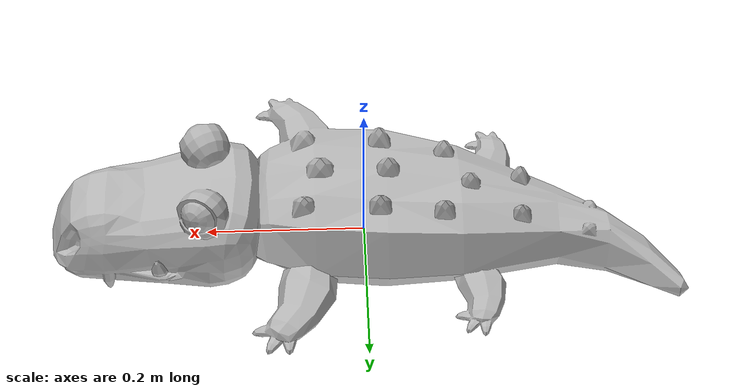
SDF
<?xml version="1.0" ?>
<sdf version="1.6">
  <model name="crocodile_buoy">
    <link name="link">
      <inertial>
        <pose>0 0 -2 0 0 0</pose>
        <!-- Mass determined based on buoyancy geometry so object
             floats at mid-point of sphere -->
        <mass>20</mass>
        <!-- Mark only - based on cylinder -->
        <inertia>
          <ixx>1.0</ixx>
          <ixy>0</ixy>
          <ixz>0</ixz>
          <iyy>1.0</iyy>
          <iyz>0</iyz>
          <izz>0.1</izz>
        </inertia>
      </inertial>
      <collision name="crocodile_collision">
        <pose>0 0 0.06 0 0 0</pose>
        <geometry>
          <box>
            <size>0.80 0.40 0.15</size>
          </box>
        </geometry>
      </collision>
      <visual name="crocodile_visual">
        <geometry>
	        <mesh><uri>model://crocodile_buoy/meshes/crocodile.dae</uri></mesh>
        </geometry>
      </visual>
    </link>
    <plugin name="CrocodrileBuoyancyPlugin" filename="libbuoyancy_gazebo_plugin.so">
      <wave_model>ocean_waves</wave_model>
      <fluid_density>1000</fluid_density>
      <fluid_level>0.0</fluid_level>
      <linear_drag>25.0</linear_drag>
      <angular_drag>2.0</angular_drag>
      <buoyancy name="buoyancy_sphere">
        <link_name>link</link_name>
        <pose>0 0 0.2 0 0 0</pose>
        <geometry>
          <sphere>
            <radius>0.325</radius>
          </sphere>
        </geometry>
      </buoyancy>
    </plugin>
    <plugin name="CrocodrileFollowPlugin" filename="libfollow_plugin.so">
      <link_name>link</link_name>
      <loop_forever>true</loop_forever>
      <waypoints>
        <waypoint>554 -172</waypoint>
        <waypoint>552 -168</waypoint>
      </waypoints>
    </plugin>
  </model>
</sdf>
